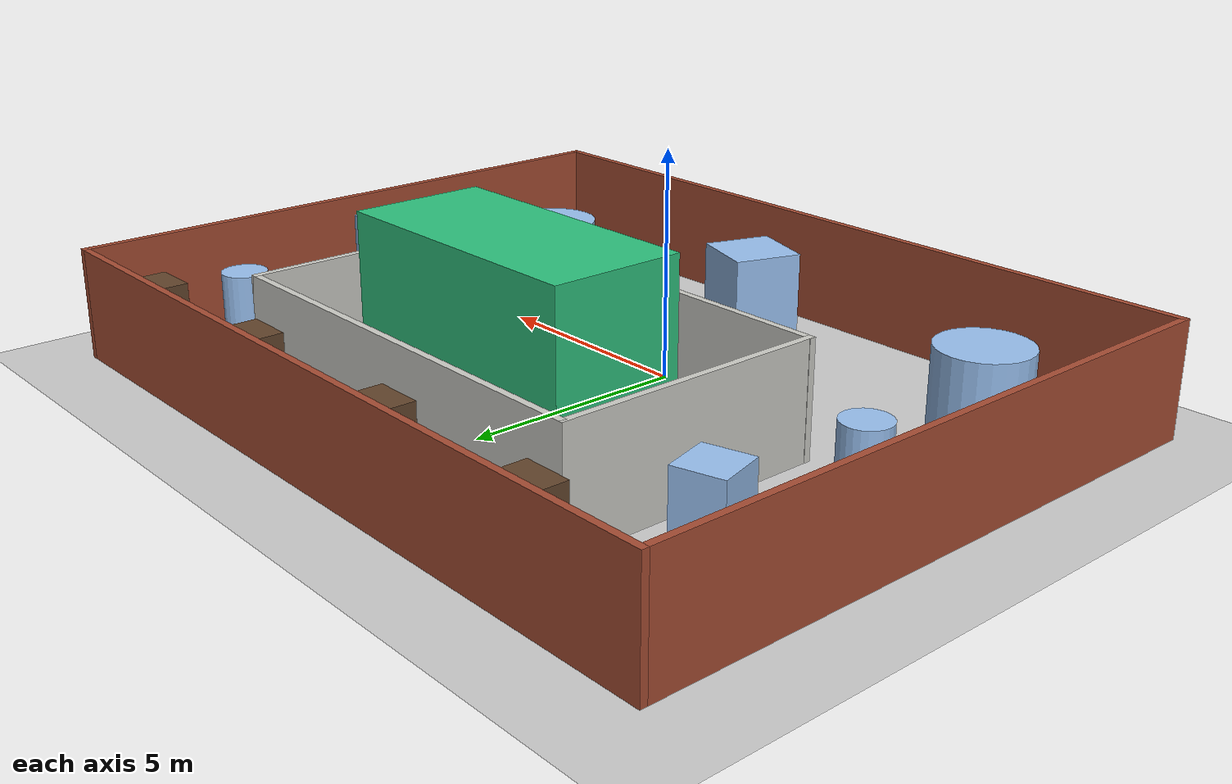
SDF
<sdf version="1.7">
 <world name="default">
  <light name="sun" type="directional">
   <pose>0 0 10 0 -0 0</pose>
   <diffuse>0.8 0.8 0.8 1</diffuse>
   <specular>0.2 0.2 0.2 1</specular>
   <attenuation>
    <range>1000</range>
    <constant>0.9</constant>
    <linear>0.01</linear>
    <quadratic>0.001</quadratic>
   </attenuation>
   <direction>-0.5 0.1 -0.9</direction>
   <spot><inner_angle>0</inner_angle><outer_angle>0</outer_angle><falloff>0</falloff></spot>
  </light>
  <model name="ground_plane">
   <static>1</static>
   <link name="link">
    <collision name="collision">
     <geometry><plane><normal>0 0 1</normal><size>100 100</size></plane></geometry>
     <surface>
      <contact><collide_bitmask>65535</collide_bitmask></contact>
      <friction><ode><mu>100</mu><mu2>50</mu2></ode></friction>
     </surface>
    </collision>
    <visual name="visual">
     <cast_shadows>0</cast_shadows>
     <geometry><plane><normal>0 0 1</normal><size>100 100</size></plane></geometry>
     <material>
      <script><uri>file://media/materials/scripts/gazebo.material</uri><name>Gazebo/Grey</name></script>
     </material>
    </visual>
   </link>
  </model>
  <gravity>0 0 -9.8</gravity>
  <magnetic_field>6e-06 2.3e-05 -4.2e-05</magnetic_field>
  <atmosphere type="adiabatic"/>
  <physics type="ode">
   <max_step_size>0.001</max_step_size>
   <real_time_factor>1</real_time_factor>
   <real_time_update_rate>1000</real_time_update_rate>
  </physics>
  <scene><ambient>0.4 0.4 0.4 1</ambient><background>0.7 0.7 0.7 1</background><shadows>1</shadows></scene>
  <audio><device>default</device></audio>
  <spherical_coordinates>
   <surface_model>EARTH_WGS84</surface_model>
   <latitude_deg>0</latitude_deg>
   <longitude_deg>0</longitude_deg>
   <elevation>0</elevation>
   <heading_deg>0</heading_deg>
  </spherical_coordinates>
  <model name="building">
   <link name="link_0">
    <inertial>
     <mass>119.736</mass>
     <inertia><ixx>518.581</ixx><ixy>0</ixy><ixz>0</ixz><iyy>817.421</iyy><iyz>0</iyz><izz>469.951</izz></inertia>
    </inertial>
    <pose>0 0 2 0 -0 0</pose>
    <visual name="visual">
     <geometry><box><size>6.20681 2.92821 4</size></box></geometry>
     <material>
      <lighting>1</lighting>
      <script><uri>file://media/materials/scripts/gazebo.material</uri><name>Gazebo/Grey</name></script>
      <shader type="pixel"><normal_map>__default__</normal_map></shader>
      <ambient>0.18 0.761 0.494 1</ambient>
      <diffuse>0.7 0.7 0.7 1</diffuse>
      <specular>0.01 0.01 0.01 1</specular>
      <emissive>0 0 0 1</emissive>
     </material>
    </visual>
    <collision name="collision">
     <geometry><box><size>6.20681 2.92821 4</size></box></geometry>
     <surface>
      <friction>
       <ode><mu>1</mu><mu2>1</mu2><fdir1>0 0 0</fdir1><slip1>0</slip1><slip2>0</slip2></ode>
       <torsional>
        <coefficient>1</coefficient>
        <patch_radius>0</patch_radius>
        <surface_radius>0</surface_radius>
        <use_patch_radius>1</use_patch_radius>
        <ode><slip>0</slip></ode>
       </torsional>
      </friction>
      <bounce><restitution_coefficient>0</restitution_coefficient><threshold>1e+06</threshold></bounce>
      <contact>
       <collide_without_contact>0</collide_without_contact>
       <collide_without_contact_bitmask>1</collide_without_contact_bitmask>
       <collide_bitmask>1</collide_bitmask>
       <ode>
        <soft_cfm>0</soft_cfm>
        <soft_erp>0.2</soft_erp>
        <kp>1e+13</kp>
        <kd>1</kd>
        <max_vel>0.01</max_vel>
        <min_depth>0</min_depth>
       </ode>
       <bullet>
        <split_impulse>1</split_impulse>
        <split_impulse_penetration_threshold>-0.01</split_impulse_penetration_threshold>
        <soft_cfm>0</soft_cfm>
        <soft_erp>0.2</soft_erp>
        <kp>1e+13</kp>
        <kd>1</kd>
       </bullet>
      </contact>
     </surface>
    </collision>
   </link>
   <static>0</static>
   <pose>0.111305 3.97757 -0 0 -0 0</pose>
  </model>
  <model name="testpole">
   <link name="link_0">
    <inertial>
     <mass>2500</mass>
     <inertia><ixx>1354.17</ixx><ixy>0</ixy><ixz>0</ixz><iyy>1510.42</iyy><iyz>0</iyz><izz>260.417</izz></inertia>
    </inertial>
    <pose>-6.05411 -4e-06 0 0 -0 0</pose>
    <visual name="visual">
     <geometry><box><size>1 0.5 2.5</size></box></geometry>
     <material>
      <lighting>1</lighting>
      <script><uri>file://media/materials/scripts/gazebo.material</uri><name>Gazebo/Grey</name></script>
      <shader type="pixel"><normal_map>__default__</normal_map></shader>
      <ambient>0.388 0.271 0.173 1</ambient>
      <diffuse>0.7 0.7 0.7 1</diffuse>
      <specular>0.01 0.01 0.01 1</specular>
      <emissive>0 0 0 1</emissive>
     </material>
    </visual>
    <collision name="collision">
     <geometry><box><size>1 0.5 2.5</size></box></geometry>
     <surface>
      <friction>
       <ode><mu>1</mu><mu2>1</mu2><fdir1>0 0 0</fdir1><slip1>0</slip1><slip2>0</slip2></ode>
       <torsional>
        <coefficient>1</coefficient>
        <patch_radius>0</patch_radius>
        <surface_radius>0</surface_radius>
        <use_patch_radius>1</use_patch_radius>
        <ode><slip>0</slip></ode>
       </torsional>
      </friction>
      <bounce><restitution_coefficient>0</restitution_coefficient><threshold>1e+06</threshold></bounce>
      <contact>
       <collide_without_contact>0</collide_without_contact>
       <collide_without_contact_bitmask>1</collide_without_contact_bitmask>
       <collide_bitmask>1</collide_bitmask>
       <ode>
        <soft_cfm>0</soft_cfm>
        <soft_erp>0.2</soft_erp>
        <kp>1e+13</kp>
        <kd>1</kd>
        <max_vel>0.01</max_vel>
        <min_depth>0</min_depth>
       </ode>
       <bullet>
        <split_impulse>1</split_impulse>
        <split_impulse_penetration_threshold>-0.01</split_impulse_penetration_threshold>
        <soft_cfm>0</soft_cfm>
        <soft_erp>0.2</soft_erp>
        <kp>1e+13</kp>
        <kd>1</kd>
       </bullet>
      </contact>
     </surface>
    </collision>
   </link>
   <link name="link_0_clone">
    <inertial>
     <mass>2500</mass>
     <inertia><ixx>1354.17</ixx><ixy>0</ixy><ixz>0</ixz><iyy>1510.42</iyy><iyz>0</iyz><izz>260.417</izz></inertia>
    </inertial>
    <pose>-2.11227 -4e-06 0 0 -0 0</pose>
    <visual name="visual">
     <geometry><box><size>1 0.5 2.5</size></box></geometry>
     <material>
      <lighting>1</lighting>
      <script><uri>file://media/materials/scripts/gazebo.material</uri><name>Gazebo/Grey</name></script>
      <shader type="pixel"><normal_map>__default__</normal_map></shader>
      <ambient>0.388 0.271 0.173 1</ambient>
      <diffuse>0.7 0.7 0.7 1</diffuse>
      <specular>0.01 0.01 0.01 1</specular>
      <emissive>0 0 0 1</emissive>
     </material>
    </visual>
    <collision name="collision">
     <geometry><box><size>1 0.5 2.5</size></box></geometry>
     <surface>
      <friction>
       <ode><mu>1</mu><mu2>1</mu2><fdir1>0 0 0</fdir1><slip1>0</slip1><slip2>0</slip2></ode>
       <torsional>
        <coefficient>1</coefficient>
        <patch_radius>0</patch_radius>
        <surface_radius>0</surface_radius>
        <use_patch_radius>1</use_patch_radius>
        <ode><slip>0</slip></ode>
       </torsional>
      </friction>
      <bounce><restitution_coefficient>0</restitution_coefficient><threshold>1e+06</threshold></bounce>
      <contact>
       <collide_without_contact>0</collide_without_contact>
       <collide_without_contact_bitmask>1</collide_without_contact_bitmask>
       <collide_bitmask>1</collide_bitmask>
       <ode>
        <soft_cfm>0</soft_cfm>
        <soft_erp>0.2</soft_erp>
        <kp>1e+13</kp>
        <kd>1</kd>
        <max_vel>0.01</max_vel>
        <min_depth>0</min_depth>
       </ode>
       <bullet>
        <split_impulse>1</split_impulse>
        <split_impulse_penetration_threshold>-0.01</split_impulse_penetration_threshold>
        <soft_cfm>0</soft_cfm>
        <soft_erp>0.2</soft_erp>
        <kp>1e+13</kp>
        <kd>1</kd>
       </bullet>
      </contact>
     </surface>
    </collision>
   </link>
   <link name="link_0_clone_0">
    <inertial>
     <mass>2500</mass>
     <inertia><ixx>1354.17</ixx><ixy>0</ixy><ixz>0</ixz><iyy>1510.42</iyy><iyz>0</iyz><izz>260.417</izz></inertia>
    </inertial>
    <pose>2.17977 -4e-06 0 0 -0 0</pose>
    <visual name="visual">
     <geometry><box><size>1 0.5 2.5</size></box></geometry>
     <material>
      <lighting>1</lighting>
      <script><uri>file://media/materials/scripts/gazebo.material</uri><name>Gazebo/Grey</name></script>
      <shader type="pixel"><normal_map>__default__</normal_map></shader>
      <ambient>0.388 0.271 0.173 1</ambient>
      <diffuse>0.7 0.7 0.7 1</diffuse>
      <specular>0.01 0.01 0.01 1</specular>
      <emissive>0 0 0 1</emissive>
     </material>
    </visual>
    <collision name="collision">
     <geometry><box><size>1 0.5 2.5</size></box></geometry>
     <surface>
      <friction>
       <ode><mu>1</mu><mu2>1</mu2><fdir1>0 0 0</fdir1><slip1>0</slip1><slip2>0</slip2></ode>
       <torsional>
        <coefficient>1</coefficient>
        <patch_radius>0</patch_radius>
        <surface_radius>0</surface_radius>
        <use_patch_radius>1</use_patch_radius>
        <ode><slip>0</slip></ode>
       </torsional>
      </friction>
      <bounce><restitution_coefficient>0</restitution_coefficient><threshold>1e+06</threshold></bounce>
      <contact>
       <collide_without_contact>0</collide_without_contact>
       <collide_without_contact_bitmask>1</collide_without_contact_bitmask>
       <collide_bitmask>1</collide_bitmask>
       <ode>
        <soft_cfm>0</soft_cfm>
        <soft_erp>0.2</soft_erp>
        <kp>1e+13</kp>
        <kd>1</kd>
        <max_vel>0.01</max_vel>
        <min_depth>0</min_depth>
       </ode>
       <bullet>
        <split_impulse>1</split_impulse>
        <split_impulse_penetration_threshold>-0.01</split_impulse_penetration_threshold>
        <soft_cfm>0</soft_cfm>
        <soft_erp>0.2</soft_erp>
        <kp>1e+13</kp>
        <kd>1</kd>
       </bullet>
      </contact>
     </surface>
    </collision>
   </link>
   <link name="link_0_clone_1">
    <inertial>
     <mass>2500</mass>
     <inertia><ixx>1354.17</ixx><ixy>0</ixy><ixz>0</ixz><iyy>1510.42</iyy><iyz>0</iyz><izz>260.417</izz></inertia>
    </inertial>
    <pose>5.98662 -4e-06 0 0 -0 0</pose>
    <visual name="visual">
     <geometry><box><size>1 0.5 2.5</size></box></geometry>
     <material>
      <lighting>1</lighting>
      <script><uri>file://media/materials/scripts/gazebo.material</uri><name>Gazebo/Grey</name></script>
      <shader type="pixel"><normal_map>__default__</normal_map></shader>
      <ambient>0.388 0.271 0.173 1</ambient>
      <diffuse>0.7 0.7 0.7 1</diffuse>
      <specular>0.01 0.01 0.01 1</specular>
      <emissive>0 0 0 1</emissive>
     </material>
    </visual>
    <collision name="collision">
     <geometry><box><size>1 0.5 2.5</size></box></geometry>
     <surface>
      <friction>
       <ode><mu>1</mu><mu2>1</mu2><fdir1>0 0 0</fdir1><slip1>0</slip1><slip2>0</slip2></ode>
       <torsional>
        <coefficient>1</coefficient>
        <patch_radius>0</patch_radius>
        <surface_radius>0</surface_radius>
        <use_patch_radius>1</use_patch_radius>
        <ode><slip>0</slip></ode>
       </torsional>
      </friction>
      <bounce><restitution_coefficient>0</restitution_coefficient><threshold>1e+06</threshold></bounce>
      <contact>
       <collide_without_contact>0</collide_without_contact>
       <collide_without_contact_bitmask>1</collide_without_contact_bitmask>
       <collide_bitmask>1</collide_bitmask>
       <ode>
        <soft_cfm>0</soft_cfm>
        <soft_erp>0.2</soft_erp>
        <kp>1e+13</kp>
        <kd>1</kd>
        <max_vel>0.01</max_vel>
        <min_depth>0</min_depth>
       </ode>
       <bullet>
        <split_impulse>1</split_impulse>
        <split_impulse_penetration_threshold>-0.01</split_impulse_penetration_threshold>
        <soft_cfm>0</soft_cfm>
        <soft_erp>0.2</soft_erp>
        <kp>1e+13</kp>
        <kd>1</kd>
       </bullet>
      </contact>
     </surface>
    </collision>
   </link>
   <static>0</static>
   <pose>-0.012241 8.35199 1.25 0 0 -3e-06</pose>
  </model>
  <model name="testworld2">
   <link name="Wall_16">
    <pose>0 -6.925 0 0 -0 0</pose>
    <inertial>
     <mass>13500</mass>
     <inertia><ixx>7056.56</ixx><ixy>0</ixy><ixz>0</ixz><iyy>371531</iyy><iyz>0</iyz><izz>364525</izz></inertia>
    </inertial>
    <visual name="Wall_16_Visual">
     <pose>0 0 1.25 0 -0 0</pose>
     <geometry><box><size>18 0.15 2.5</size></box></geometry>
     <material>
      <script><uri>file://media/materials/scripts/gazebo.material</uri><name>Gazebo/Bricks</name></script>
      <ambient>1 1 1 1</ambient>
      <shader type="pixel"><normal_map>__default__</normal_map></shader>
     </material>
     <meta><layer>0</layer></meta>
    </visual>
    <collision name="Wall_16_Collision">
     <pose>0 0 1.25 0 -0 0</pose>
     <geometry><box><size>18 0.15 2.5</size></box></geometry>
     <surface>
      <friction>
       <ode><mu>1</mu><mu2>1</mu2><fdir1>0 0 0</fdir1><slip1>0</slip1><slip2>0</slip2></ode>
       <torsional>
        <coefficient>1</coefficient>
        <patch_radius>0</patch_radius>
        <surface_radius>0</surface_radius>
        <use_patch_radius>1</use_patch_radius>
        <ode><slip>0</slip></ode>
       </torsional>
      </friction>
      <bounce><restitution_coefficient>0</restitution_coefficient><threshold>1e+06</threshold></bounce>
      <contact>
       <collide_without_contact>0</collide_without_contact>
       <collide_without_contact_bitmask>1</collide_without_contact_bitmask>
       <collide_bitmask>1</collide_bitmask>
       <ode>
        <soft_cfm>0</soft_cfm>
        <soft_erp>0.2</soft_erp>
        <kp>1e+13</kp>
        <kd>1</kd>
        <max_vel>0.01</max_vel>
        <min_depth>0</min_depth>
       </ode>
       <bullet>
        <split_impulse>1</split_impulse>
        <split_impulse_penetration_threshold>-0.01</split_impulse_penetration_threshold>
        <soft_cfm>0</soft_cfm>
        <soft_erp>0.2</soft_erp>
        <kp>1e+13</kp>
        <kd>1</kd>
       </bullet>
      </contact>
     </surface>
    </collision>
   </link>
   <link name="Wall_17">
    <pose>8.925 0 0 0 -0 1.5708</pose>
    <inertial>
     <mass>10500</mass>
     <inertia><ixx>5488.44</ixx><ixy>0</ixy><ixz>0</ixz><iyy>176969</iyy><iyz>0</iyz><izz>171520</izz></inertia>
    </inertial>
    <visual name="Wall_17_Visual">
     <pose>0 0 1.25 0 -0 0</pose>
     <geometry><box><size>14 0.15 2.5</size></box></geometry>
     <material>
      <script><uri>file://media/materials/scripts/gazebo.material</uri><name>Gazebo/Bricks</name></script>
      <ambient>1 1 1 1</ambient>
      <shader type="pixel"><normal_map>__default__</normal_map></shader>
     </material>
     <meta><layer>0</layer></meta>
    </visual>
    <collision name="Wall_17_Collision">
     <pose>0 0 1.25 0 -0 0</pose>
     <geometry><box><size>14 0.15 2.5</size></box></geometry>
     <surface>
      <friction>
       <ode><mu>1</mu><mu2>1</mu2><fdir1>0 0 0</fdir1><slip1>0</slip1><slip2>0</slip2></ode>
       <torsional>
        <coefficient>1</coefficient>
        <patch_radius>0</patch_radius>
        <surface_radius>0</surface_radius>
        <use_patch_radius>1</use_patch_radius>
        <ode><slip>0</slip></ode>
       </torsional>
      </friction>
      <bounce><restitution_coefficient>0</restitution_coefficient><threshold>1e+06</threshold></bounce>
      <contact>
       <collide_without_contact>0</collide_without_contact>
       <collide_without_contact_bitmask>1</collide_without_contact_bitmask>
       <collide_bitmask>1</collide_bitmask>
       <ode>
        <soft_cfm>0</soft_cfm>
        <soft_erp>0.2</soft_erp>
        <kp>1e+13</kp>
        <kd>1</kd>
        <max_vel>0.01</max_vel>
        <min_depth>0</min_depth>
       </ode>
       <bullet>
        <split_impulse>1</split_impulse>
        <split_impulse_penetration_threshold>-0.01</split_impulse_penetration_threshold>
        <soft_cfm>0</soft_cfm>
        <soft_erp>0.2</soft_erp>
        <kp>1e+13</kp>
        <kd>1</kd>
       </bullet>
      </contact>
     </surface>
    </collision>
   </link>
   <link name="Wall_18">
    <pose>0 6.925 0 0 -0 3.14159</pose>
    <inertial>
     <mass>13500</mass>
     <inertia><ixx>7056.56</ixx><ixy>0</ixy><ixz>0</ixz><iyy>371531</iyy><iyz>0</iyz><izz>364525</izz></inertia>
    </inertial>
    <visual name="Wall_18_Visual">
     <pose>0 0 1.25 0 -0 0</pose>
     <geometry><box><size>18 0.15 2.5</size></box></geometry>
     <material>
      <script><uri>file://media/materials/scripts/gazebo.material</uri><name>Gazebo/Bricks</name></script>
      <ambient>1 1 1 1</ambient>
      <shader type="pixel"><normal_map>__default__</normal_map></shader>
     </material>
     <meta><layer>0</layer></meta>
    </visual>
    <collision name="Wall_18_Collision">
     <pose>0 0 1.25 0 -0 0</pose>
     <geometry><box><size>18 0.15 2.5</size></box></geometry>
     <surface>
      <friction>
       <ode><mu>1</mu><mu2>1</mu2><fdir1>0 0 0</fdir1><slip1>0</slip1><slip2>0</slip2></ode>
       <torsional>
        <coefficient>1</coefficient>
        <patch_radius>0</patch_radius>
        <surface_radius>0</surface_radius>
        <use_patch_radius>1</use_patch_radius>
        <ode><slip>0</slip></ode>
       </torsional>
      </friction>
      <bounce><restitution_coefficient>0</restitution_coefficient><threshold>1e+06</threshold></bounce>
      <contact>
       <collide_without_contact>0</collide_without_contact>
       <collide_without_contact_bitmask>1</collide_without_contact_bitmask>
       <collide_bitmask>1</collide_bitmask>
       <ode>
        <soft_cfm>0</soft_cfm>
        <soft_erp>0.2</soft_erp>
        <kp>1e+13</kp>
        <kd>1</kd>
        <max_vel>0.01</max_vel>
        <min_depth>0</min_depth>
       </ode>
       <bullet>
        <split_impulse>1</split_impulse>
        <split_impulse_penetration_threshold>-0.01</split_impulse_penetration_threshold>
        <soft_cfm>0</soft_cfm>
        <soft_erp>0.2</soft_erp>
        <kp>1e+13</kp>
        <kd>1</kd>
       </bullet>
      </contact>
     </surface>
    </collision>
   </link>
   <link name="Wall_19">
    <pose>-8.925 0 0 0 0 -1.5708</pose>
    <inertial>
     <mass>10500</mass>
     <inertia><ixx>5488.44</ixx><ixy>0</ixy><ixz>0</ixz><iyy>176969</iyy><iyz>0</iyz><izz>171520</izz></inertia>
    </inertial>
    <visual name="Wall_19_Visual">
     <pose>0 0 1.25 0 -0 0</pose>
     <geometry><box><size>14 0.15 2.5</size></box></geometry>
     <material>
      <script><uri>file://media/materials/scripts/gazebo.material</uri><name>Gazebo/Bricks</name></script>
      <ambient>1 1 1 1</ambient>
      <shader type="pixel"><normal_map>__default__</normal_map></shader>
     </material>
     <meta><layer>0</layer></meta>
    </visual>
    <collision name="Wall_19_Collision">
     <pose>0 0 1.25 0 -0 0</pose>
     <geometry><box><size>14 0.15 2.5</size></box></geometry>
     <surface>
      <friction>
       <ode><mu>1</mu><mu2>1</mu2><fdir1>0 0 0</fdir1><slip1>0</slip1><slip2>0</slip2></ode>
       <torsional>
        <coefficient>1</coefficient>
        <patch_radius>0</patch_radius>
        <surface_radius>0</surface_radius>
        <use_patch_radius>1</use_patch_radius>
        <ode><slip>0</slip></ode>
       </torsional>
      </friction>
      <bounce><restitution_coefficient>0</restitution_coefficient><threshold>1e+06</threshold></bounce>
      <contact>
       <collide_without_contact>0</collide_without_contact>
       <collide_without_contact_bitmask>1</collide_without_contact_bitmask>
       <collide_bitmask>1</collide_bitmask>
       <ode>
        <soft_cfm>0</soft_cfm>
        <soft_erp>0.2</soft_erp>
        <kp>1e+13</kp>
        <kd>1</kd>
        <max_vel>0.01</max_vel>
        <min_depth>0</min_depth>
       </ode>
       <bullet>
        <split_impulse>1</split_impulse>
        <split_impulse_penetration_threshold>-0.01</split_impulse_penetration_threshold>
        <soft_cfm>0</soft_cfm>
        <soft_erp>0.2</soft_erp>
        <kp>1e+13</kp>
        <kd>1</kd>
       </bullet>
      </contact>
     </surface>
    </collision>
   </link>
   <link name="Wall_26">
    <pose>-0.040552 5.03123 0 0 -0 0</pose>
    <inertial>
     <mass>7500</mass>
     <inertia><ixx>3920.31</ixx><ixy>0</ixy><ixz>0</ixz><iyy>66406.2</iyy><iyz>0</iyz><izz>62514.1</izz></inertia>
    </inertial>
    <visual name="Wall_26_Visual">
     <pose>0 0 1.25 0 -0 0</pose>
     <geometry><box><size>10 0.15 2.5</size></box></geometry>
     <material>
      <script><uri>file://media/materials/scripts/gazebo.material</uri><name>Gazebo/CeilingTiled</name></script>
      <ambient>1 1 1 1</ambient>
      <shader type="pixel"><normal_map>__default__</normal_map></shader>
     </material>
     <meta><layer>0</layer></meta>
    </visual>
    <collision name="Wall_26_Collision">
     <pose>0 0 1.25 0 -0 0</pose>
     <geometry><box><size>10 0.15 2.5</size></box></geometry>
     <surface>
      <friction>
       <ode><mu>1</mu><mu2>1</mu2><fdir1>0 0 0</fdir1><slip1>0</slip1><slip2>0</slip2></ode>
       <torsional>
        <coefficient>1</coefficient>
        <patch_radius>0</patch_radius>
        <surface_radius>0</surface_radius>
        <use_patch_radius>1</use_patch_radius>
        <ode><slip>0</slip></ode>
       </torsional>
      </friction>
      <bounce><restitution_coefficient>0</restitution_coefficient><threshold>1e+06</threshold></bounce>
      <contact>
       <collide_without_contact>0</collide_without_contact>
       <collide_without_contact_bitmask>1</collide_without_contact_bitmask>
       <collide_bitmask>1</collide_bitmask>
       <ode>
        <soft_cfm>0</soft_cfm>
        <soft_erp>0.2</soft_erp>
        <kp>1e+13</kp>
        <kd>1</kd>
        <max_vel>0.01</max_vel>
        <min_depth>0</min_depth>
       </ode>
       <bullet>
        <split_impulse>1</split_impulse>
        <split_impulse_penetration_threshold>-0.01</split_impulse_penetration_threshold>
        <soft_cfm>0</soft_cfm>
        <soft_erp>0.2</soft_erp>
        <kp>1e+13</kp>
        <kd>1</kd>
       </bullet>
      </contact>
     </surface>
    </collision>
   </link>
   <link name="Wall_26_clone">
    <pose>-0.048736 -0.821736 0 0 -0 0</pose>
    <inertial>
     <mass>7500</mass>
     <inertia><ixx>3920.31</ixx><ixy>0</ixy><ixz>0</ixz><iyy>66406.2</iyy><iyz>0</iyz><izz>62514.1</izz></inertia>
    </inertial>
    <visual name="Wall_26_Visual">
     <pose>0 0 1.25 0 -0 0</pose>
     <geometry><box><size>10 0.15 2.5</size></box></geometry>
     <material>
      <script><uri>file://media/materials/scripts/gazebo.material</uri><name>Gazebo/CeilingTiled</name></script>
      <ambient>1 1 1 1</ambient>
      <shader type="pixel"><normal_map>__default__</normal_map></shader>
     </material>
     <meta><layer>0</layer></meta>
    </visual>
    <collision name="Wall_26_Collision">
     <pose>0 0 1.25 0 -0 0</pose>
     <geometry><box><size>10 0.15 2.5</size></box></geometry>
     <surface>
      <friction>
       <ode><mu>1</mu><mu2>1</mu2><fdir1>0 0 0</fdir1><slip1>0</slip1><slip2>0</slip2></ode>
       <torsional>
        <coefficient>1</coefficient>
        <patch_radius>0</patch_radius>
        <surface_radius>0</surface_radius>
        <use_patch_radius>1</use_patch_radius>
        <ode><slip>0</slip></ode>
       </torsional>
      </friction>
      <bounce><restitution_coefficient>0</restitution_coefficient><threshold>1e+06</threshold></bounce>
      <contact>
       <collide_without_contact>0</collide_without_contact>
       <collide_without_contact_bitmask>1</collide_without_contact_bitmask>
       <collide_bitmask>1</collide_bitmask>
       <ode>
        <soft_cfm>0</soft_cfm>
        <soft_erp>0.2</soft_erp>
        <kp>1e+13</kp>
        <kd>1</kd>
        <max_vel>0.01</max_vel>
        <min_depth>0</min_depth>
       </ode>
       <bullet>
        <split_impulse>1</split_impulse>
        <split_impulse_penetration_threshold>-0.01</split_impulse_penetration_threshold>
        <soft_cfm>0</soft_cfm>
        <soft_erp>0.2</soft_erp>
        <kp>1e+13</kp>
        <kd>1</kd>
       </bullet>
      </contact>
     </surface>
    </collision>
   </link>
   <link name="Wall_27">
    <pose>4.88445 2.10623 0 0 0 -1.5708</pose>
    <inertial>
     <mass>4500</mass>
     <inertia><ixx>2352.19</ixx><ixy>0</ixy><ixz>0</ixz><iyy>15843.8</iyy><iyz>0</iyz><izz>13508.4</izz></inertia>
    </inertial>
    <visual name="Wall_27_Visual">
     <pose>0 0 1.25 0 -0 0</pose>
     <geometry><box><size>6 0.15 2.5</size></box></geometry>
     <material>
      <script><uri>file://media/materials/scripts/gazebo.material</uri><name>Gazebo/CeilingTiled</name></script>
      <ambient>1 1 1 1</ambient>
      <shader type="pixel"><normal_map>__default__</normal_map></shader>
     </material>
     <meta><layer>0</layer></meta>
    </visual>
    <collision name="Wall_27_Collision">
     <pose>0 0 1.25 0 -0 0</pose>
     <geometry><box><size>6 0.15 2.5</size></box></geometry>
     <surface>
      <friction>
       <ode><mu>1</mu><mu2>1</mu2><fdir1>0 0 0</fdir1><slip1>0</slip1><slip2>0</slip2></ode>
       <torsional>
        <coefficient>1</coefficient>
        <patch_radius>0</patch_radius>
        <surface_radius>0</surface_radius>
        <use_patch_radius>1</use_patch_radius>
        <ode><slip>0</slip></ode>
       </torsional>
      </friction>
      <bounce><restitution_coefficient>0</restitution_coefficient><threshold>1e+06</threshold></bounce>
      <contact>
       <collide_without_contact>0</collide_without_contact>
       <collide_without_contact_bitmask>1</collide_without_contact_bitmask>
       <collide_bitmask>1</collide_bitmask>
       <ode>
        <soft_cfm>0</soft_cfm>
        <soft_erp>0.2</soft_erp>
        <kp>1e+13</kp>
        <kd>1</kd>
        <max_vel>0.01</max_vel>
        <min_depth>0</min_depth>
       </ode>
       <bullet>
        <split_impulse>1</split_impulse>
        <split_impulse_penetration_threshold>-0.01</split_impulse_penetration_threshold>
        <soft_cfm>0</soft_cfm>
        <soft_erp>0.2</soft_erp>
        <kp>1e+13</kp>
        <kd>1</kd>
       </bullet>
      </contact>
     </surface>
    </collision>
   </link>
   <link name="Wall_29">
    <pose>-4.96555 2.10623 0 0 -0 1.5708</pose>
    <inertial>
     <mass>4500</mass>
     <inertia><ixx>2352.19</ixx><ixy>0</ixy><ixz>0</ixz><iyy>15843.8</iyy><iyz>0</iyz><izz>13508.4</izz></inertia>
    </inertial>
    <visual name="Wall_29_Visual">
     <pose>0 0 1.25 0 -0 0</pose>
     <geometry><box><size>6 0.15 2.5</size></box></geometry>
     <material>
      <script><uri>file://media/materials/scripts/gazebo.material</uri><name>Gazebo/CeilingTiled</name></script>
      <ambient>1 1 1 1</ambient>
      <shader type="pixel"><normal_map>__default__</normal_map></shader>
     </material>
     <meta><layer>0</layer></meta>
    </visual>
    <collision name="Wall_29_Collision">
     <pose>0 0 1.25 0 -0 0</pose>
     <geometry><box><size>6 0.15 2.5</size></box></geometry>
     <surface>
      <friction>
       <ode><mu>1</mu><mu2>1</mu2><fdir1>0 0 0</fdir1><slip1>0</slip1><slip2>0</slip2></ode>
       <torsional>
        <coefficient>1</coefficient>
        <patch_radius>0</patch_radius>
        <surface_radius>0</surface_radius>
        <use_patch_radius>1</use_patch_radius>
        <ode><slip>0</slip></ode>
       </torsional>
      </friction>
      <bounce><restitution_coefficient>0</restitution_coefficient><threshold>1e+06</threshold></bounce>
      <contact>
       <collide_without_contact>0</collide_without_contact>
       <collide_without_contact_bitmask>1</collide_without_contact_bitmask>
       <collide_bitmask>1</collide_bitmask>
       <ode>
        <soft_cfm>0</soft_cfm>
        <soft_erp>0.2</soft_erp>
        <kp>1e+13</kp>
        <kd>1</kd>
        <max_vel>0.01</max_vel>
        <min_depth>0</min_depth>
       </ode>
       <bullet>
        <split_impulse>1</split_impulse>
        <split_impulse_penetration_threshold>-0.01</split_impulse_penetration_threshold>
        <soft_cfm>0</soft_cfm>
        <soft_erp>0.2</soft_erp>
        <kp>1e+13</kp>
        <kd>1</kd>
       </bullet>
      </contact>
     </surface>
    </collision>
   </link>
   <static>1</static>
   <pose>0.162507 1.75199 0 0 -0 0</pose>
  </model>
  <model name="pole2">
   <link name="link_3_clone">
    <inertial>
     <mass>3141.59</mass>
     <inertia><ixx>1243.55</ixx><ixy>0</ixy><ixz>0</ixz><iyy>1243.55</iyy><iyz>0</iyz><izz>392.699</izz></inertia>
    </inertial>
    <pose>-6.22562 -0.156163 1 0 -0 0</pose>
    <visual name="visual">
     <geometry><cylinder><radius>1</radius><length>2</length></cylinder></geometry>
     <material>
      <lighting>1</lighting>
      <script><uri>file://media/materials/scripts/gazebo.material</uri><name>Gazebo/Grey</name></script>
      <shader type="pixel"><normal_map>__default__</normal_map></shader>
      <ambient>0.6 0.757 0.945 1</ambient>
      <diffuse>0.7 0.7 0.7 1</diffuse>
      <specular>0.01 0.01 0.01 1</specular>
      <emissive>0 0 0 1</emissive>
     </material>
    </visual>
    <collision name="collision">
     <geometry><cylinder><radius>1</radius><length>2</length></cylinder></geometry>
     <surface>
      <friction>
       <ode><mu>1</mu><mu2>1</mu2><fdir1>0 0 0</fdir1><slip1>0</slip1><slip2>0</slip2></ode>
       <torsional>
        <coefficient>1</coefficient>
        <patch_radius>0</patch_radius>
        <surface_radius>0</surface_radius>
        <use_patch_radius>1</use_patch_radius>
        <ode><slip>0</slip></ode>
       </torsional>
      </friction>
      <bounce><restitution_coefficient>0</restitution_coefficient><threshold>1e+06</threshold></bounce>
      <contact>
       <collide_without_contact>0</collide_without_contact>
       <collide_without_contact_bitmask>1</collide_without_contact_bitmask>
       <collide_bitmask>1</collide_bitmask>
       <ode>
        <soft_cfm>0</soft_cfm>
        <soft_erp>0.2</soft_erp>
        <kp>1e+13</kp>
        <kd>1</kd>
        <max_vel>0.01</max_vel>
        <min_depth>0</min_depth>
       </ode>
       <bullet>
        <split_impulse>1</split_impulse>
        <split_impulse_penetration_threshold>-0.01</split_impulse_penetration_threshold>
        <soft_cfm>0</soft_cfm>
        <soft_erp>0.2</soft_erp>
        <kp>1e+13</kp>
        <kd>1</kd>
       </bullet>
      </contact>
     </surface>
    </collision>
   </link>
   <link name="link_0">
    <inertial>
     <mass>2000</mass>
     <inertia><ixx>333.333</ixx><ixy>0</ixy><ixz>0</ixz><iyy>333.333</iyy><iyz>0</iyz><izz>333.333</izz></inertia>
    </inertial>
    <pose>-0.146467 -0.140928 1.25 -0 -0 -0.32159</pose>
    <visual name="visual">
     <geometry><box><size>1.5 1.5 2.5</size></box></geometry>
     <material>
      <lighting>1</lighting>
      <script><uri>file://media/materials/scripts/gazebo.material</uri><name>Gazebo/Grey</name></script>
      <shader type="pixel"><normal_map>__default__</normal_map></shader>
      <ambient>0.6 0.757 0.945 1</ambient>
      <diffuse>0.7 0.7 0.7 1</diffuse>
      <specular>0.01 0.01 0.01 1</specular>
      <emissive>0 0 0 1</emissive>
     </material>
    </visual>
    <collision name="collision">
     <geometry><box><size>1.5 1.5 2.5</size></box></geometry>
     <surface>
      <friction>
       <ode><mu>1</mu><mu2>1</mu2><fdir1>0 0 0</fdir1><slip1>0</slip1><slip2>0</slip2></ode>
       <torsional>
        <coefficient>1</coefficient>
        <patch_radius>0</patch_radius>
        <surface_radius>0</surface_radius>
        <use_patch_radius>1</use_patch_radius>
        <ode><slip>0</slip></ode>
       </torsional>
      </friction>
      <bounce><restitution_coefficient>0</restitution_coefficient><threshold>1e+06</threshold></bounce>
      <contact>
       <collide_without_contact>0</collide_without_contact>
       <collide_without_contact_bitmask>1</collide_without_contact_bitmask>
       <collide_bitmask>1</collide_bitmask>
       <ode>
        <soft_cfm>0</soft_cfm>
        <soft_erp>0.2</soft_erp>
        <kp>1e+13</kp>
        <kd>1</kd>
        <max_vel>0.01</max_vel>
        <min_depth>0</min_depth>
       </ode>
       <bullet>
        <split_impulse>1</split_impulse>
        <split_impulse_penetration_threshold>-0.01</split_impulse_penetration_threshold>
        <soft_cfm>0</soft_cfm>
        <soft_erp>0.2</soft_erp>
        <kp>1e+13</kp>
        <kd>1</kd>
       </bullet>
      </contact>
     </surface>
    </collision>
   </link>
   <link name="link_1">
    <inertial>
     <mass>2000</mass>
     <inertia><ixx>333.333</ixx><ixy>0</ixy><ixz>0</ixz><iyy>333.333</iyy><iyz>0</iyz><izz>333.333</izz></inertia>
    </inertial>
    <pose>-7.3012 8.14726 1.25 0 -0 0.279502</pose>
    <visual name="visual">
     <geometry><box><size>1 1 2.5</size></box></geometry>
     <material>
      <lighting>1</lighting>
      <script><uri>file://media/materials/scripts/gazebo.material</uri><name>Gazebo/Grey</name></script>
      <shader type="pixel"><normal_map>__default__</normal_map></shader>
      <ambient>0.6 0.757 0.945 1</ambient>
      <diffuse>0.7 0.7 0.7 1</diffuse>
      <specular>0.01 0.01 0.01 1</specular>
      <emissive>0 0 0 1</emissive>
     </material>
    </visual>
    <collision name="collision">
     <geometry><box><size>1 1 2.5</size></box></geometry>
     <surface>
      <friction>
       <ode><mu>1</mu><mu2>1</mu2><fdir1>0 0 0</fdir1><slip1>0</slip1><slip2>0</slip2></ode>
       <torsional>
        <coefficient>1</coefficient>
        <patch_radius>0</patch_radius>
        <surface_radius>0</surface_radius>
        <use_patch_radius>1</use_patch_radius>
        <ode><slip>0</slip></ode>
       </torsional>
      </friction>
      <bounce><restitution_coefficient>0</restitution_coefficient><threshold>1e+06</threshold></bounce>
      <contact>
       <collide_without_contact>0</collide_without_contact>
       <collide_without_contact_bitmask>1</collide_without_contact_bitmask>
       <collide_bitmask>1</collide_bitmask>
       <ode>
        <soft_cfm>0</soft_cfm>
        <soft_erp>0.2</soft_erp>
        <kp>1e+13</kp>
        <kd>1</kd>
        <max_vel>0.01</max_vel>
        <min_depth>0</min_depth>
       </ode>
       <bullet>
        <split_impulse>1</split_impulse>
        <split_impulse_penetration_threshold>-0.01</split_impulse_penetration_threshold>
        <soft_cfm>0</soft_cfm>
        <soft_erp>0.2</soft_erp>
        <kp>1e+13</kp>
        <kd>1</kd>
       </bullet>
      </contact>
     </surface>
    </collision>
   </link>
   <link name="link_1_clone">
    <inertial>
     <mass>2000</mass>
     <inertia><ixx>333.333</ixx><ixy>0</ixy><ixz>0</ixz><iyy>333.333</iyy><iyz>0</iyz><izz>333.333</izz></inertia>
    </inertial>
    <pose>7.19047 4.52696 1.25 0 0 -0.198697</pose>
    <visual name="visual">
     <geometry><box><size>1 1 2.5</size></box></geometry>
     <material>
      <lighting>1</lighting>
      <script><uri>file://media/materials/scripts/gazebo.material</uri><name>Gazebo/Grey</name></script>
      <shader type="pixel"><normal_map>__default__</normal_map></shader>
      <ambient>0.6 0.757 0.945 1</ambient>
      <diffuse>0.7 0.7 0.7 1</diffuse>
      <specular>0.01 0.01 0.01 1</specular>
      <emissive>0 0 0 1</emissive>
     </material>
    </visual>
    <collision name="collision">
     <geometry><box><size>1 1 2.5</size></box></geometry>
     <surface>
      <friction>
       <ode><mu>1</mu><mu2>1</mu2><fdir1>0 0 0</fdir1><slip1>0</slip1><slip2>0</slip2></ode>
       <torsional>
        <coefficient>1</coefficient>
        <patch_radius>0</patch_radius>
        <surface_radius>0</surface_radius>
        <use_patch_radius>1</use_patch_radius>
        <ode><slip>0</slip></ode>
       </torsional>
      </friction>
      <bounce><restitution_coefficient>0</restitution_coefficient><threshold>1e+06</threshold></bounce>
      <contact>
       <collide_without_contact>0</collide_without_contact>
       <collide_without_contact_bitmask>1</collide_without_contact_bitmask>
       <collide_bitmask>1</collide_bitmask>
       <ode>
        <soft_cfm>0</soft_cfm>
        <soft_erp>0.2</soft_erp>
        <kp>1e+13</kp>
        <kd>1</kd>
        <max_vel>0.01</max_vel>
        <min_depth>0</min_depth>
       </ode>
       <bullet>
        <split_impulse>1</split_impulse>
        <split_impulse_penetration_threshold>-0.01</split_impulse_penetration_threshold>
        <soft_cfm>0</soft_cfm>
        <soft_erp>0.2</soft_erp>
        <kp>1e+13</kp>
        <kd>1</kd>
       </bullet>
      </contact>
     </surface>
    </collision>
   </link>
   <link name="link_3_clone_clone">
    <inertial>
     <mass>3141.59</mass>
     <inertia><ixx>1243.55</ixx><ixy>0</ixy><ixz>0</ixz><iyy>1243.55</iyy><iyz>0</iyz><izz>392.699</izz></inertia>
    </inertial>
    <pose>5.81183 0.541566 1 0 -0 0</pose>
    <visual name="visual">
     <geometry><cylinder><radius>1</radius><length>2</length></cylinder></geometry>
     <material>
      <lighting>1</lighting>
      <script><uri>file://media/materials/scripts/gazebo.material</uri><name>Gazebo/Grey</name></script>
      <shader type="pixel"><normal_map>__default__</normal_map></shader>
      <ambient>0.6 0.757 0.945 1</ambient>
      <diffuse>0.7 0.7 0.7 1</diffuse>
      <specular>0.01 0.01 0.01 1</specular>
      <emissive>0 0 0 1</emissive>
     </material>
    </visual>
    <collision name="collision">
     <geometry><cylinder><radius>1</radius><length>2</length></cylinder></geometry>
     <surface>
      <friction>
       <ode><mu>1</mu><mu2>1</mu2><fdir1>0 0 0</fdir1><slip1>0</slip1><slip2>0</slip2></ode>
       <torsional>
        <coefficient>1</coefficient>
        <patch_radius>0</patch_radius>
        <surface_radius>0</surface_radius>
        <use_patch_radius>1</use_patch_radius>
        <ode><slip>0</slip></ode>
       </torsional>
      </friction>
      <bounce><restitution_coefficient>0</restitution_coefficient><threshold>1e+06</threshold></bounce>
      <contact>
       <collide_without_contact>0</collide_without_contact>
       <collide_without_contact_bitmask>1</collide_without_contact_bitmask>
       <collide_bitmask>1</collide_bitmask>
       <ode>
        <soft_cfm>0</soft_cfm>
        <soft_erp>0.2</soft_erp>
        <kp>1e+13</kp>
        <kd>1</kd>
        <max_vel>0.01</max_vel>
        <min_depth>0</min_depth>
       </ode>
       <bullet>
        <split_impulse>1</split_impulse>
        <split_impulse_penetration_threshold>-0.01</split_impulse_penetration_threshold>
        <soft_cfm>0</soft_cfm>
        <soft_erp>0.2</soft_erp>
        <kp>1e+13</kp>
        <kd>1</kd>
       </bullet>
      </contact>
     </surface>
    </collision>
   </link>
   <link name="link_3_clone_clone_clone">
    <inertial>
     <mass>3141.59</mass>
     <inertia><ixx>1243.55</ixx><ixy>0</ixy><ixz>0</ixz><iyy>1243.55</iyy><iyz>0</iyz><izz>392.699</izz></inertia>
    </inertial>
    <pose>7.03983 8.21235 1 0 -0 0</pose>
    <visual name="visual">
     <geometry><cylinder><radius>0.5</radius><length>2</length></cylinder></geometry>
     <material>
      <lighting>1</lighting>
      <script><uri>file://media/materials/scripts/gazebo.material</uri><name>Gazebo/Grey</name></script>
      <shader type="pixel"><normal_map>__default__</normal_map></shader>
      <ambient>0.6 0.757 0.945 1</ambient>
      <diffuse>0.7 0.7 0.7 1</diffuse>
      <specular>0.01 0.01 0.01 1</specular>
      <emissive>0 0 0 1</emissive>
     </material>
    </visual>
    <collision name="collision">
     <geometry><cylinder><radius>0.5</radius><length>2</length></cylinder></geometry>
     <surface>
      <friction>
       <ode><mu>1</mu><mu2>1</mu2><fdir1>0 0 0</fdir1><slip1>0</slip1><slip2>0</slip2></ode>
       <torsional>
        <coefficient>1</coefficient>
        <patch_radius>0</patch_radius>
        <surface_radius>0</surface_radius>
        <use_patch_radius>1</use_patch_radius>
        <ode><slip>0</slip></ode>
       </torsional>
      </friction>
      <bounce><restitution_coefficient>0</restitution_coefficient><threshold>1e+06</threshold></bounce>
      <contact>
       <collide_without_contact>0</collide_without_contact>
       <collide_without_contact_bitmask>1</collide_without_contact_bitmask>
       <collide_bitmask>1</collide_bitmask>
       <ode>
        <soft_cfm>0</soft_cfm>
        <soft_erp>0.2</soft_erp>
        <kp>1e+13</kp>
        <kd>1</kd>
        <max_vel>0.01</max_vel>
        <min_depth>0</min_depth>
       </ode>
       <bullet>
        <split_impulse>1</split_impulse>
        <split_impulse_penetration_threshold>-0.01</split_impulse_penetration_threshold>
        <soft_cfm>0</soft_cfm>
        <soft_erp>0.2</soft_erp>
        <kp>1e+13</kp>
        <kd>1</kd>
       </bullet>
      </contact>
     </surface>
    </collision>
   </link>
   <link name="link_3_clone_clone_clone_clone_0">
    <inertial>
     <mass>3141.59</mass>
     <inertia><ixx>1243.55</ixx><ixy>0</ixy><ixz>0</ixz><iyy>1243.55</iyy><iyz>0</iyz><izz>392.699</izz></inertia>
    </inertial>
    <pose>-7.0558 4.27801 1 0 -0 0</pose>
    <visual name="visual">
     <geometry><cylinder><radius>0.5</radius><length>2</length></cylinder></geometry>
     <material>
      <lighting>1</lighting>
      <script><uri>file://media/materials/scripts/gazebo.material</uri><name>Gazebo/Grey</name></script>
      <shader type="pixel"><normal_map>__default__</normal_map></shader>
      <ambient>0.6 0.757 0.945 1</ambient>
      <diffuse>0.7 0.7 0.7 1</diffuse>
      <specular>0.01 0.01 0.01 1</specular>
      <emissive>0 0 0 1</emissive>
     </material>
    </visual>
    <collision name="collision">
     <geometry><cylinder><radius>0.5</radius><length>2</length></cylinder></geometry>
     <surface>
      <friction>
       <ode><mu>1</mu><mu2>1</mu2><fdir1>0 0 0</fdir1><slip1>0</slip1><slip2>0</slip2></ode>
       <torsional>
        <coefficient>1</coefficient>
        <patch_radius>0</patch_radius>
        <surface_radius>0</surface_radius>
        <use_patch_radius>1</use_patch_radius>
        <ode><slip>0</slip></ode>
       </torsional>
      </friction>
      <bounce><restitution_coefficient>0</restitution_coefficient><threshold>1e+06</threshold></bounce>
      <contact>
       <collide_without_contact>0</collide_without_contact>
       <collide_without_contact_bitmask>1</collide_without_contact_bitmask>
       <collide_bitmask>1</collide_bitmask>
       <ode>
        <soft_cfm>0</soft_cfm>
        <soft_erp>0.2</soft_erp>
        <kp>1e+13</kp>
        <kd>1</kd>
        <max_vel>0.01</max_vel>
        <min_depth>0</min_depth>
       </ode>
       <bullet>
        <split_impulse>1</split_impulse>
        <split_impulse_penetration_threshold>-0.01</split_impulse_penetration_threshold>
        <soft_cfm>0</soft_cfm>
        <soft_erp>0.2</soft_erp>
        <kp>1e+13</kp>
        <kd>1</kd>
       </bullet>
      </contact>
     </surface>
    </collision>
   </link>
   <static>0</static>
   <pose>-0.168361 -2.1071 -0 0 -0 0</pose>
  </model>
 </world>
</sdf>
